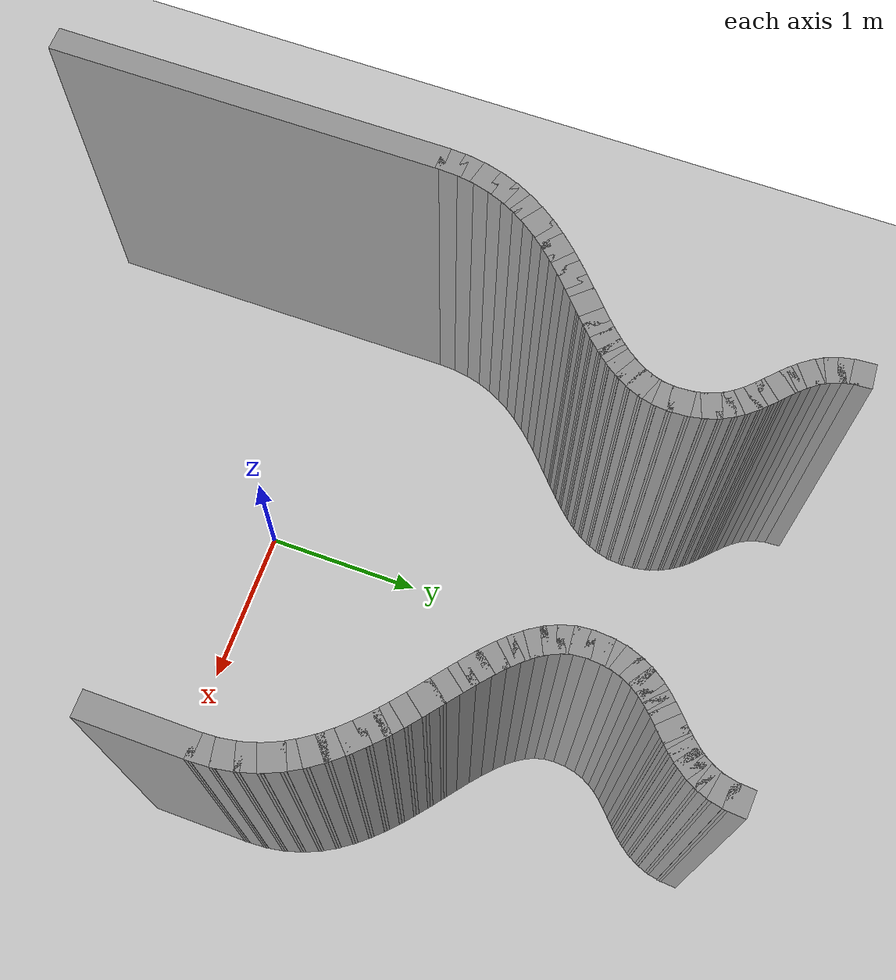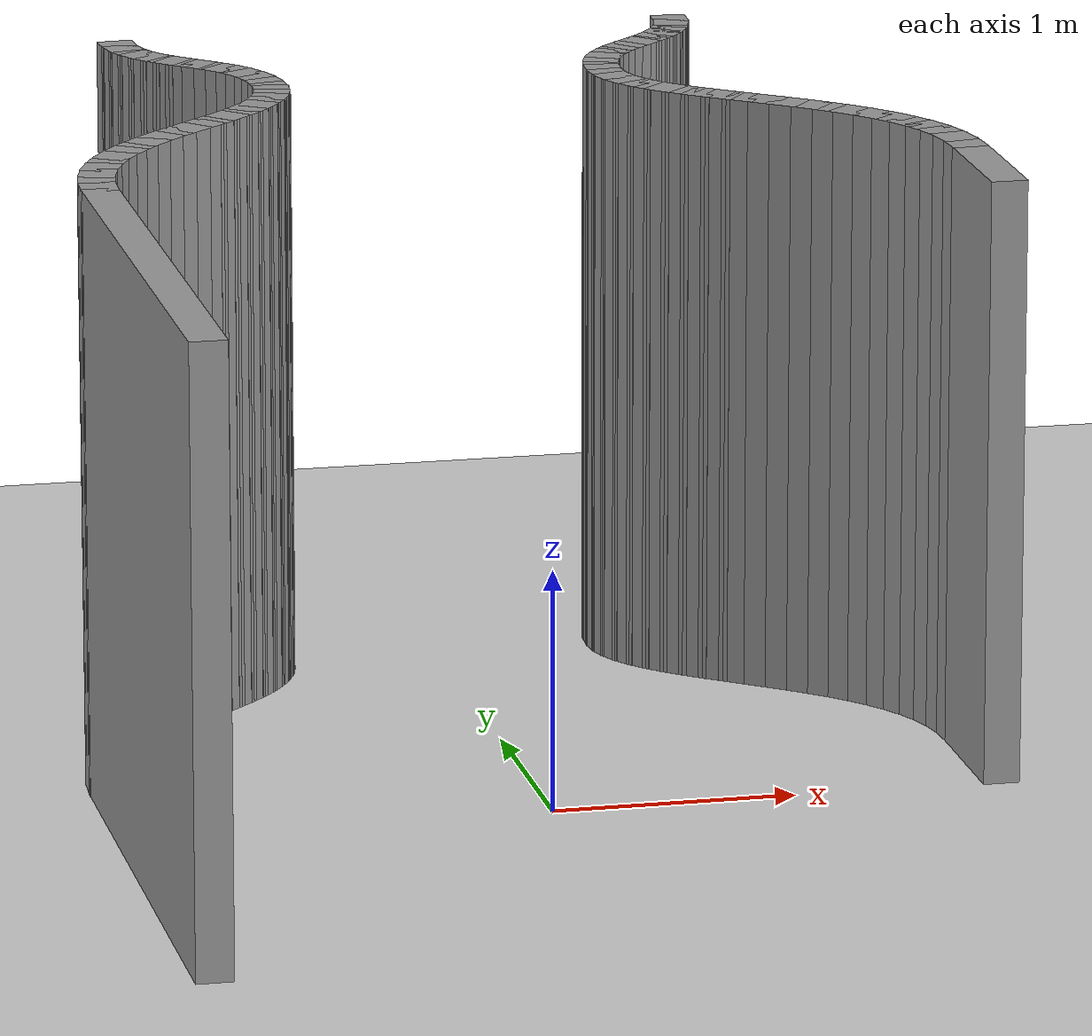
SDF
<sdf version="1.7">
 <world name="default">
  <model name="ground_plane">
   <static>1</static>
   <link name="link">
    <collision name="collision">
     <geometry><plane><normal>0 0 1</normal><size>100 100</size></plane></geometry>
     <surface>
      <contact><collide_bitmask>65535</collide_bitmask></contact>
      <friction><ode><mu>100</mu><mu2>50</mu2></ode></friction>
     </surface>
    </collision>
    <visual name="visual">
     <cast_shadows>0</cast_shadows>
     <geometry><plane><normal>0 0 1</normal><size>100 100</size></plane></geometry>
     <material>
      <script><uri>file://media/materials/scripts/gazebo.material</uri><name>Gazebo/Grey</name></script>
     </material>
    </visual>
   </link>
  </model>
  <model name="map_hourglass_u_hourglass">
   <link name="Hourglass_left_upper_00">
    <collision name="Hourglass_left_upper_00_Collision">
     <geometry><box><size>0.124347 0.15 2.5</size></box></geometry>
     <pose>0 0 1.25 0 -0 0</pose>
    </collision>
    <visual name="Hourglass_left_upper_00_Visual">
     <pose>0 0 1.25 0 -0 0</pose>
     <geometry><box><size>0.124347 0.15 2.5</size></box></geometry>
     <material>
      <script><uri>file://media/materials/scripts/gazebo.material</uri><name>Gazebo/Grey</name></script>
      <ambient>1 1 1 1</ambient>
     </material>
    </visual>
    <pose>-1.197249 3.157916 0 0 -0 -1.505509</pose>
   </link>
   <link name="Hourglass_left_upper_01">
    <collision name="Hourglass_left_upper_01_Collision">
     <geometry><box><size>0.115174 0.15 2.5</size></box></geometry>
     <pose>0 0 1.25 0 -0 0</pose>
    </collision>
    <visual name="Hourglass_left_upper_01_Visual">
     <pose>0 0 1.25 0 -0 0</pose>
     <geometry><box><size>0.115174 0.15 2.5</size></box></geometry>
     <material>
      <script><uri>file://media/materials/scripts/gazebo.material</uri><name>Gazebo/Grey</name></script>
      <ambient>1 1 1 1</ambient>
     </material>
    </visual>
    <pose>-1.186721 3.079059 0 0 -0 -1.362414</pose>
   </link>
   <link name="Hourglass_left_upper_02">
    <collision name="Hourglass_left_upper_02_Collision">
     <geometry><box><size>0.108873 0.15 2.5</size></box></geometry>
     <pose>0 0 1.25 0 -0 0</pose>
    </collision>
    <visual name="Hourglass_left_upper_02_Visual">
     <pose>0 0 1.25 0 -0 0</pose>
     <geometry><box><size>0.108873 0.15 2.5</size></box></geometry>
     <material>
      <script><uri>file://media/materials/scripts/gazebo.material</uri><name>Gazebo/Grey</name></script>
      <ambient>1 1 1 1</ambient>
     </material>
    </visual>
    <pose>-1.166863 3.010038 0 0 -0 -1.212304</pose>
   </link>
   <link name="Hourglass_left_upper_03">
    <collision name="Hourglass_left_upper_03_Collision">
     <geometry><box><size>0.105057 0.15 2.5</size></box></geometry>
     <pose>0 0 1.25 0 -0 0</pose>
    </collision>
    <visual name="Hourglass_left_upper_03_Visual">
     <pose>0 0 1.25 0 -0 0</pose>
     <geometry><box><size>0.105057 0.15 2.5</size></box></geometry>
     <material>
      <script><uri>file://media/materials/scripts/gazebo.material</uri><name>Gazebo/Grey</name></script>
      <ambient>1 1 1 1</ambient>
     </material>
    </visual>
    <pose>-1.139109 2.949286 0 0 -0 -1.068119</pose>
   </link>
   <link name="Hourglass_left_upper_04">
    <collision name="Hourglass_left_upper_04_Collision">
     <geometry><box><size>0.103132 0.15 2.5</size></box></geometry>
     <pose>0 0 1.25 0 -0 0</pose>
    </collision>
    <visual name="Hourglass_left_upper_04_Visual">
     <pose>0 0 1.25 0 -0 0</pose>
     <geometry><box><size>0.103132 0.15 2.5</size></box></geometry>
     <material>
      <script><uri>file://media/materials/scripts/gazebo.material</uri><name>Gazebo/Grey</name></script>
      <ambient>1 1 1 1</ambient>
     </material>
    </visual>
    <pose>-1.104895 2.895236 0 0 -0 -0.942927</pose>
   </link>
   <link name="Hourglass_left_upper_05">
    <collision name="Hourglass_left_upper_05_Collision">
     <geometry><box><size>0.102434 0.15 2.5</size></box></geometry>
     <pose>0 0 1.25 0 -0 0</pose>
    </collision>
    <visual name="Hourglass_left_upper_05_Visual">
     <pose>0 0 1.25 0 -0 0</pose>
     <geometry><box><size>0.102434 0.15 2.5</size></box></geometry>
     <material>
      <script><uri>file://media/materials/scripts/gazebo.material</uri><name>Gazebo/Grey</name></script>
      <ambient>1 1 1 1</ambient>
     </material>
    </visual>
    <pose>-1.065657 2.846320 0 0 -0 -0.846018</pose>
   </link>
   <link name="Hourglass_left_upper_06">
    <collision name="Hourglass_left_upper_06_Collision">
     <geometry><box><size>0.102381 0.15 2.5</size></box></geometry>
     <pose>0 0 1.25 0 -0 0</pose>
    </collision>
    <visual name="Hourglass_left_upper_06_Visual">
     <pose>0 0 1.25 0 -0 0</pose>
     <geometry><box><size>0.102381 0.15 2.5</size></box></geometry>
     <material>
      <script><uri>file://media/materials/scripts/gazebo.material</uri><name>Gazebo/Grey</name></script>
      <ambient>1 1 1 1</ambient>
     </material>
    </visual>
    <pose>-1.022830 2.800970 0 0 -0 -0.781939</pose>
   </link>
   <link name="Hourglass_left_upper_07">
    <collision name="Hourglass_left_upper_07_Collision">
     <geometry><box><size>0.102571 0.15 2.5</size></box></geometry>
     <pose>0 0 1.25 0 -0 0</pose>
    </collision>
    <visual name="Hourglass_left_upper_07_Visual">
     <pose>0 0 1.25 0 -0 0</pose>
     <geometry><box><size>0.102571 0.15 2.5</size></box></geometry>
     <material>
      <script><uri>file://media/materials/scripts/gazebo.material</uri><name>Gazebo/Grey</name></script>
      <ambient>1 1 1 1</ambient>
     </material>
    </visual>
    <pose>-0.977849 2.757621 0 0 -0 -0.751981</pose>
   </link>
   <link name="Hourglass_left_upper_08">
    <collision name="Hourglass_left_upper_08_Collision">
     <geometry><box><size>0.102812 0.15 2.5</size></box></geometry>
     <pose>0 0 1.25 0 -0 0</pose>
    </collision>
    <visual name="Hourglass_left_upper_08_Visual">
     <pose>0 0 1.25 0 -0 0</pose>
     <geometry><box><size>0.102812 0.15 2.5</size></box></geometry>
     <material>
      <script><uri>file://media/materials/scripts/gazebo.material</uri><name>Gazebo/Grey</name></script>
      <ambient>1 1 1 1</ambient>
     </material>
    </visual>
    <pose>-0.932151 2.714703 0 0 -0 -0.756068</pose>
   </link>
   <link name="Hourglass_left_upper_09">
    <collision name="Hourglass_left_upper_09_Collision">
     <geometry><box><size>0.103129 0.15 2.5</size></box></geometry>
     <pose>0 0 1.25 0 -0 0</pose>
    </collision>
    <visual name="Hourglass_left_upper_09_Visual">
     <pose>0 0 1.25 0 -0 0</pose>
     <geometry><box><size>0.103129 0.15 2.5</size></box></geometry>
     <material>
      <script><uri>file://media/materials/scripts/gazebo.material</uri><name>Gazebo/Grey</name></script>
      <ambient>1 1 1 1</ambient>
     </material>
    </visual>
    <pose>-0.887170 2.670651 0 0 -0 -0.793794</pose>
   </link>
   <link name="Hourglass_left_upper_10">
    <collision name="Hourglass_left_upper_10_Collision">
     <geometry><box><size>0.10376 0.15 2.5</size></box></geometry>
     <pose>0 0 1.25 0 -0 0</pose>
    </collision>
    <visual name="Hourglass_left_upper_10_Visual">
     <pose>0 0 1.25 0 -0 0</pose>
     <geometry><box><size>0.10376 0.15 2.5</size></box></geometry>
     <material>
      <script><uri>file://media/materials/scripts/gazebo.material</uri><name>Gazebo/Grey</name></script>
      <ambient>1 1 1 1</ambient>
     </material>
    </visual>
    <pose>-0.844343 2.623895 0 0 -0 -0.864296</pose>
   </link>
   <link name="Hourglass_left_upper_11">
    <collision name="Hourglass_left_upper_11_Collision">
     <geometry><box><size>0.105139 0.15 2.5</size></box></geometry>
     <pose>0 0 1.25 0 -0 0</pose>
    </collision>
    <visual name="Hourglass_left_upper_11_Visual">
     <pose>0 0 1.25 0 -0 0</pose>
     <geometry><box><size>0.105139 0.15 2.5</size></box></geometry>
     <material>
      <script><uri>file://media/materials/scripts/gazebo.material</uri><name>Gazebo/Grey</name></script>
      <ambient>1 1 1 1</ambient>
     </material>
    </visual>
    <pose>-0.805105 2.572870 0 0 -0 -0.965121</pose>
   </link>
   <link name="Hourglass_left_upper_12">
    <collision name="Hourglass_left_upper_12_Collision">
     <geometry><box><size>0.107847 0.15 2.5</size></box></geometry>
     <pose>0 0 1.25 0 -0 0</pose>
    </collision>
    <visual name="Hourglass_left_upper_12_Visual">
     <pose>0 0 1.25 0 -0 0</pose>
     <geometry><box><size>0.107847 0.15 2.5</size></box></geometry>
     <material>
      <script><uri>file://media/materials/scripts/gazebo.material</uri><name>Gazebo/Grey</name></script>
      <ambient>1 1 1 1</ambient>
     </material>
    </visual>
    <pose>-0.770891 2.516007 0 0 -0 -1.090589</pose>
   </link>
   <link name="Hourglass_left_upper_13">
    <collision name="Hourglass_left_upper_13_Collision">
     <geometry><box><size>0.112507 0.15 2.5</size></box></geometry>
     <pose>0 0 1.25 0 -0 0</pose>
    </collision>
    <visual name="Hourglass_left_upper_13_Visual">
     <pose>0 0 1.25 0 -0 0</pose>
     <geometry><box><size>0.112507 0.15 2.5</size></box></geometry>
     <material>
      <script><uri>file://media/materials/scripts/gazebo.material</uri><name>Gazebo/Grey</name></script>
      <ambient>1 1 1 1</ambient>
     </material>
    </visual>
    <pose>-0.743137 2.451740 0 0 -0 -1.231018</pose>
   </link>
   <link name="Hourglass_left_upper_14">
    <collision name="Hourglass_left_upper_14_Collision">
     <geometry><box><size>0.119651 0.15 2.5</size></box></geometry>
     <pose>0 0 1.25 0 -0 0</pose>
    </collision>
    <visual name="Hourglass_left_upper_14_Visual">
     <pose>0 0 1.25 0 -0 0</pose>
     <geometry><box><size>0.119651 0.15 2.5</size></box></geometry>
     <material>
      <script><uri>file://media/materials/scripts/gazebo.material</uri><name>Gazebo/Grey</name></script>
      <ambient>1 1 1 1</ambient>
     </material>
    </visual>
    <pose>-0.723279 2.378500 0 0 -0 -1.374284</pose>
   </link>
   <link name="Hourglass_left_upper_15">
    <collision name="Hourglass_left_upper_15_Collision">
     <geometry><box><size>0.12961 0.15 2.5</size></box></geometry>
     <pose>0 0 1.25 0 -0 0</pose>
    </collision>
    <visual name="Hourglass_left_upper_15_Visual">
     <pose>0 0 1.25 0 -0 0</pose>
     <geometry><box><size>0.12961 0.15 2.5</size></box></geometry>
     <material>
      <script><uri>file://media/materials/scripts/gazebo.material</uri><name>Gazebo/Grey</name></script>
      <ambient>1 1 1 1</ambient>
     </material>
    </visual>
    <pose>-0.712751 2.294720 0 0 -0 -1.509348</pose>
   </link>
   <link name="Hourglass_left_lower_00">
    <collision name="Hourglass_left_lower_00_Collision">
     <geometry><box><size>0.115649 0.15 2.5</size></box></geometry>
     <pose>0 0 1.25 0 -0 0</pose>
    </collision>
    <visual name="Hourglass_left_lower_00_Visual">
     <pose>0 0 1.25 0 -0 0</pose>
     <geometry><box><size>0.115649 0.15 2.5</size></box></geometry>
     <material>
      <script><uri>file://media/materials/scripts/gazebo.material</uri><name>Gazebo/Grey</name></script>
      <ambient>1 1 1 1</ambient>
     </material>
    </visual>
    <pose>-0.712975 2.212293 0 0 -0 -1.649536</pose>
   </link>
   <link name="Hourglass_left_lower_01">
    <collision name="Hourglass_left_lower_01_Collision">
     <geometry><box><size>0.113231 0.15 2.5</size></box></geometry>
     <pose>0 0 1.25 0 -0 0</pose>
    </collision>
    <visual name="Hourglass_left_lower_01_Visual">
     <pose>0 0 1.25 0 -0 0</pose>
     <geometry><box><size>0.113231 0.15 2.5</size></box></geometry>
     <material>
      <script><uri>file://media/materials/scripts/gazebo.material</uri><name>Gazebo/Grey</name></script>
      <ambient>1 1 1 1</ambient>
     </material>
    </visual>
    <pose>-0.724504 2.138983 0 0 -0 -1.806584</pose>
   </link>
   <link name="Hourglass_left_lower_02">
    <collision name="Hourglass_left_lower_02_Collision">
     <geometry><box><size>0.112868 0.15 2.5</size></box></geometry>
     <pose>0 0 1.25 0 -0 0</pose>
    </collision>
    <visual name="Hourglass_left_lower_02_Visual">
     <pose>0 0 1.25 0 -0 0</pose>
     <geometry><box><size>0.112868 0.15 2.5</size></box></geometry>
     <material>
      <script><uri>file://media/materials/scripts/gazebo.material</uri><name>Gazebo/Grey</name></script>
      <ambient>1 1 1 1</ambient>
     </material>
    </visual>
    <pose>-0.746632 2.069570 0 0 -0 -1.952581</pose>
   </link>
   <link name="Hourglass_left_lower_03">
    <collision name="Hourglass_left_lower_03_Collision">
     <geometry><box><size>0.114045 0.15 2.5</size></box></geometry>
     <pose>0 0 1.25 0 -0 0</pose>
    </collision>
    <visual name="Hourglass_left_lower_03_Visual">
     <pose>0 0 1.25 0 -0 0</pose>
     <geometry><box><size>0.114045 0.15 2.5</size></box></geometry>
     <material>
      <script><uri>file://media/materials/scripts/gazebo.material</uri><name>Gazebo/Grey</name></script>
      <ambient>1 1 1 1</ambient>
     </material>
    </visual>
    <pose>-0.778244 2.003428 0 0 -0 -2.079672</pose>
   </link>
   <link name="Hourglass_left_lower_04">
    <collision name="Hourglass_left_lower_04_Collision">
     <geometry><box><size>0.116229 0.15 2.5</size></box></geometry>
     <pose>0 0 1.25 0 -0 0</pose>
    </collision>
    <visual name="Hourglass_left_lower_04_Visual">
     <pose>0 0 1.25 0 -0 0</pose>
     <geometry><box><size>0.116229 0.15 2.5</size></box></geometry>
     <material>
      <script><uri>file://media/materials/scripts/gazebo.material</uri><name>Gazebo/Grey</name></script>
      <ambient>1 1 1 1</ambient>
     </material>
    </visual>
    <pose>-0.818223 1.939932 0 0 -0 -2.184244</pose>
   </link>
   <link name="Hourglass_left_lower_05">
    <collision name="Hourglass_left_lower_05_Collision">
     <geometry><box><size>0.118951 0.15 2.5</size></box></geometry>
     <pose>0 0 1.25 0 -0 0</pose>
    </collision>
    <visual name="Hourglass_left_lower_05_Visual">
     <pose>0 0 1.25 0 -0 0</pose>
     <geometry><box><size>0.118951 0.15 2.5</size></box></geometry>
     <material>
      <script><uri>file://media/materials/scripts/gazebo.material</uri><name>Gazebo/Grey</name></script>
      <ambient>1 1 1 1</ambient>
     </material>
    </visual>
    <pose>-0.865455 1.878456 0 0 -0 -2.266115</pose>
   </link>
   <link name="Hourglass_left_lower_06">
    <collision name="Hourglass_left_lower_06_Collision">
     <geometry><box><size>0.121846 0.15 2.5</size></box></geometry>
     <pose>0 0 1.25 0 -0 0</pose>
    </collision>
    <visual name="Hourglass_left_lower_06_Visual">
     <pose>0 0 1.25 0 -0 0</pose>
     <geometry><box><size>0.121846 0.15 2.5</size></box></geometry>
     <material>
      <script><uri>file://media/materials/scripts/gazebo.material</uri><name>Gazebo/Grey</name></script>
      <ambient>1 1 1 1</ambient>
     </material>
    </visual>
    <pose>-0.918822 1.818374 0 0 -0 -2.326957</pose>
   </link>
   <link name="Hourglass_left_lower_07">
    <collision name="Hourglass_left_lower_07_Collision">
     <geometry><box><size>0.124651 0.15 2.5</size></box></geometry>
     <pose>0 0 1.25 0 -0 0</pose>
    </collision>
    <visual name="Hourglass_left_lower_07_Visual">
     <pose>0 0 1.25 0 -0 0</pose>
     <geometry><box><size>0.124651 0.15 2.5</size></box></geometry>
     <material>
      <script><uri>file://media/materials/scripts/gazebo.material</uri><name>Gazebo/Grey</name></script>
      <ambient>1 1 1 1</ambient>
     </material>
    </visual>
    <pose>-0.977211 1.759061 0 0 -0 -2.369021</pose>
   </link>
   <link name="Hourglass_left_lower_08">
    <collision name="Hourglass_left_lower_08_Collision">
     <geometry><box><size>0.127194 0.15 2.5</size></box></geometry>
     <pose>0 0 1.25 0 -0 0</pose>
    </collision>
    <visual name="Hourglass_left_lower_08_Visual">
     <pose>0 0 1.25 0 -0 0</pose>
     <geometry><box><size>0.127194 0.15 2.5</size></box></geometry>
     <material>
      <script><uri>file://media/materials/scripts/gazebo.material</uri><name>Gazebo/Grey</name></script>
      <ambient>1 1 1 1</ambient>
     </material>
    </visual>
    <pose>-1.039504 1.699892 0 0 -0 -2.394429</pose>
   </link>
   <link name="Hourglass_left_lower_09">
    <collision name="Hourglass_left_lower_09_Collision">
     <geometry><box><size>0.129375 0.15 2.5</size></box></geometry>
     <pose>0 0 1.25 0 -0 0</pose>
    </collision>
    <visual name="Hourglass_left_lower_09_Visual">
     <pose>0 0 1.25 0 -0 0</pose>
     <geometry><box><size>0.129375 0.15 2.5</size></box></geometry>
     <material>
      <script><uri>file://media/materials/scripts/gazebo.material</uri><name>Gazebo/Grey</name></script>
      <ambient>1 1 1 1</ambient>
     </material>
    </visual>
    <pose>-1.104587 1.640242 0 0 -0 -2.404874</pose>
   </link>
   <link name="Hourglass_left_lower_10">
    <collision name="Hourglass_left_lower_10_Collision">
     <geometry><box><size>0.131156 0.15 2.5</size></box></geometry>
     <pose>0 0 1.25 0 -0 0</pose>
    </collision>
    <visual name="Hourglass_left_lower_10_Visual">
     <pose>0 0 1.25 0 -0 0</pose>
     <geometry><box><size>0.131156 0.15 2.5</size></box></geometry>
     <material>
      <script><uri>file://media/materials/scripts/gazebo.material</uri><name>Gazebo/Grey</name></script>
      <ambient>1 1 1 1</ambient>
     </material>
    </visual>
    <pose>-1.171343 1.579484 0 0 -0 -2.401559</pose>
   </link>
   <link name="Hourglass_left_lower_11">
    <collision name="Hourglass_left_lower_11_Collision">
     <geometry><box><size>0.132548 0.15 2.5</size></box></geometry>
     <pose>0 0 1.25 0 -0 0</pose>
    </collision>
    <visual name="Hourglass_left_lower_11_Visual">
     <pose>0 0 1.25 0 -0 0</pose>
     <geometry><box><size>0.132548 0.15 2.5</size></box></geometry>
     <material>
      <script><uri>file://media/materials/scripts/gazebo.material</uri><name>Gazebo/Grey</name></script>
      <ambient>1 1 1 1</ambient>
     </material>
    </visual>
    <pose>-1.238657 1.516993 0 0 -0 -2.385238</pose>
   </link>
   <link name="Hourglass_left_lower_12">
    <collision name="Hourglass_left_lower_12_Collision">
     <geometry><box><size>0.133609 0.15 2.5</size></box></geometry>
     <pose>0 0 1.25 0 -0 0</pose>
    </collision>
    <visual name="Hourglass_left_lower_12_Visual">
     <pose>0 0 1.25 0 -0 0</pose>
     <geometry><box><size>0.133609 0.15 2.5</size></box></geometry>
     <material>
      <script><uri>file://media/materials/scripts/gazebo.material</uri><name>Gazebo/Grey</name></script>
      <ambient>1 1 1 1</ambient>
     </material>
    </visual>
    <pose>-1.305413 1.452145 0 0 -0 -2.356301</pose>
   </link>
   <link name="Hourglass_left_lower_13">
    <collision name="Hourglass_left_lower_13_Collision">
     <geometry><box><size>0.134442 0.15 2.5</size></box></geometry>
     <pose>0 0 1.25 0 -0 0</pose>
    </collision>
    <visual name="Hourglass_left_lower_13_Visual">
     <pose>0 0 1.25 0 -0 0</pose>
     <geometry><box><size>0.134442 0.15 2.5</size></box></geometry>
     <material>
      <script><uri>file://media/materials/scripts/gazebo.material</uri><name>Gazebo/Grey</name></script>
      <ambient>1 1 1 1</ambient>
     </material>
    </visual>
    <pose>-1.370496 1.384312 0 0 -0 -2.314901</pose>
   </link>
   <link name="Hourglass_left_lower_14">
    <collision name="Hourglass_left_lower_14_Collision">
     <geometry><box><size>0.135198 0.15 2.5</size></box></geometry>
     <pose>0 0 1.25 0 -0 0</pose>
    </collision>
    <visual name="Hourglass_left_lower_14_Visual">
     <pose>0 0 1.25 0 -0 0</pose>
     <geometry><box><size>0.135198 0.15 2.5</size></box></geometry>
     <material>
      <script><uri>file://media/materials/scripts/gazebo.material</uri><name>Gazebo/Grey</name></script>
      <ambient>1 1 1 1</ambient>
     </material>
    </visual>
    <pose>-1.432789 1.312870 0 0 -0 -2.261105</pose>
   </link>
   <link name="Hourglass_left_lower_15">
    <collision name="Hourglass_left_lower_15_Collision">
     <geometry><box><size>0.136072 0.15 2.5</size></box></geometry>
     <pose>0 0 1.25 0 -0 0</pose>
    </collision>
    <visual name="Hourglass_left_lower_15_Visual">
     <pose>0 0 1.25 0 -0 0</pose>
     <geometry><box><size>0.136072 0.15 2.5</size></box></geometry>
     <material>
      <script><uri>file://media/materials/scripts/gazebo.material</uri><name>Gazebo/Grey</name></script>
      <ambient>1 1 1 1</ambient>
     </material>
    </visual>
    <pose>-1.491178 1.237194 0 0 -0 -2.195099</pose>
   </link>
   <link name="Hourglass_left_lower_16">
    <collision name="Hourglass_left_lower_16_Collision">
     <geometry><box><size>0.137301 0.15 2.5</size></box></geometry>
     <pose>0 0 1.25 0 -0 0</pose>
    </collision>
    <visual name="Hourglass_left_lower_16_Visual">
     <pose>0 0 1.25 0 -0 0</pose>
     <geometry><box><size>0.137301 0.15 2.5</size></box></geometry>
     <material>
      <script><uri>file://media/materials/scripts/gazebo.material</uri><name>Gazebo/Grey</name></script>
      <ambient>1 1 1 1</ambient>
     </material>
    </visual>
    <pose>-1.544545 1.156658 0 0 -0 -2.117428</pose>
   </link>
   <link name="Hourglass_left_lower_17">
    <collision name="Hourglass_left_lower_17_Collision">
     <geometry><box><size>0.13916 0.15 2.5</size></box></geometry>
     <pose>0 0 1.25 0 -0 0</pose>
    </collision>
    <visual name="Hourglass_left_lower_17_Visual">
     <pose>0 0 1.25 0 -0 0</pose>
     <geometry><box><size>0.13916 0.15 2.5</size></box></geometry>
     <material>
      <script><uri>file://media/materials/scripts/gazebo.material</uri><name>Gazebo/Grey</name></script>
      <ambient>1 1 1 1</ambient>
     </material>
    </visual>
    <pose>-1.591777 1.070636 0 0 -0 -2.029247</pose>
   </link>
   <link name="Hourglass_left_lower_18">
    <collision name="Hourglass_left_lower_18_Collision">
     <geometry><box><size>0.141941 0.15 2.5</size></box></geometry>
     <pose>0 0 1.25 0 -0 0</pose>
    </collision>
    <visual name="Hourglass_left_lower_18_Visual">
     <pose>0 0 1.25 0 -0 0</pose>
     <geometry><box><size>0.141941 0.15 2.5</size></box></geometry>
     <material>
      <script><uri>file://media/materials/scripts/gazebo.material</uri><name>Gazebo/Grey</name></script>
      <ambient>1 1 1 1</ambient>
     </material>
    </visual>
    <pose>-1.631756 0.978503 0 0 -0 -1.932507</pose>
   </link>
   <link name="Hourglass_left_lower_19">
    <collision name="Hourglass_left_lower_19_Collision">
     <geometry><box><size>0.145932 0.15 2.5</size></box></geometry>
     <pose>0 0 1.25 0 -0 0</pose>
    </collision>
    <visual name="Hourglass_left_lower_19_Visual">
     <pose>0 0 1.25 0 -0 0</pose>
     <geometry><box><size>0.145932 0.15 2.5</size></box></geometry>
     <material>
      <script><uri>file://media/materials/scripts/gazebo.material</uri><name>Gazebo/Grey</name></script>
      <ambient>1 1 1 1</ambient>
     </material>
    </visual>
    <pose>-1.663368 0.879634 0 0 -0 -1.829973</pose>
   </link>
   <link name="Hourglass_left_lower_20">
    <collision name="Hourglass_left_lower_20_Collision">
     <geometry><box><size>0.15139 0.15 2.5</size></box></geometry>
     <pose>0 0 1.25 0 -0 0</pose>
    </collision>
    <visual name="Hourglass_left_lower_20_Visual">
     <pose>0 0 1.25 0 -0 0</pose>
     <geometry><box><size>0.15139 0.15 2.5</size></box></geometry>
     <material>
      <script><uri>file://media/materials/scripts/gazebo.material</uri><name>Gazebo/Grey</name></script>
      <ambient>1 1 1 1</ambient>
     </material>
    </visual>
    <pose>-1.685496 0.773403 0 0 -0 -1.724988</pose>
   </link>
   <link name="Hourglass_left_lower_21">
    <collision name="Hourglass_left_lower_21_Collision">
     <geometry><box><size>0.158518 0.15 2.5</size></box></geometry>
     <pose>0 0 1.25 0 -0 0</pose>
    </collision>
    <visual name="Hourglass_left_lower_21_Visual">
     <pose>0 0 1.25 0 -0 0</pose>
     <geometry><box><size>0.158518 0.15 2.5</size></box></geometry>
     <material>
      <script><uri>file://media/materials/scripts/gazebo.material</uri><name>Gazebo/Grey</name></script>
      <ambient>1 1 1 1</ambient>
     </material>
    </visual>
    <pose>-1.697025 0.659184 0 0 -0 -1.621024</pose>
   </link>
   <link name="Hourglass_left_arm">
    <collision name="Hourglass_left_arm_Collision">
     <geometry><box><size>2.44 0.15 2.5</size></box></geometry>
     <pose>0 0 1.25 0 -0 0</pose>
    </collision>
    <visual name="Hourglass_left_arm_Visual">
     <pose>0 0 1.25 0 -0 0</pose>
     <geometry><box><size>2.44 0.15 2.5</size></box></geometry>
     <material>
      <script><uri>file://media/materials/scripts/gazebo.material</uri><name>Gazebo/Grey</name></script>
      <ambient>1 1 1 1</ambient>
     </material>
    </visual>
    <pose>-1.700000 -0.600000 0 0 -0 -1.570796</pose>
   </link>
   <link name="Hourglass_right_upper_00">
    <collision name="Hourglass_right_upper_00_Collision">
     <geometry><box><size>0.124347 0.15 2.5</size></box></geometry>
     <pose>0 0 1.25 0 -0 0</pose>
    </collision>
    <visual name="Hourglass_right_upper_00_Visual">
     <pose>0 0 1.25 0 -0 0</pose>
     <geometry><box><size>0.124347 0.15 2.5</size></box></geometry>
     <material>
      <script><uri>file://media/materials/scripts/gazebo.material</uri><name>Gazebo/Grey</name></script>
      <ambient>1 1 1 1</ambient>
     </material>
    </visual>
    <pose>1.197249 3.157916 0 0 -0 -1.636084</pose>
   </link>
   <link name="Hourglass_right_upper_01">
    <collision name="Hourglass_right_upper_01_Collision">
     <geometry><box><size>0.115174 0.15 2.5</size></box></geometry>
     <pose>0 0 1.25 0 -0 0</pose>
    </collision>
    <visual name="Hourglass_right_upper_01_Visual">
     <pose>0 0 1.25 0 -0 0</pose>
     <geometry><box><size>0.115174 0.15 2.5</size></box></geometry>
     <material>
      <script><uri>file://media/materials/scripts/gazebo.material</uri><name>Gazebo/Grey</name></script>
      <ambient>1 1 1 1</ambient>
     </material>
    </visual>
    <pose>1.186721 3.079059 0 0 -0 -1.779179</pose>
   </link>
   <link name="Hourglass_right_upper_02">
    <collision name="Hourglass_right_upper_02_Collision">
     <geometry><box><size>0.108873 0.15 2.5</size></box></geometry>
     <pose>0 0 1.25 0 -0 0</pose>
    </collision>
    <visual name="Hourglass_right_upper_02_Visual">
     <pose>0 0 1.25 0 -0 0</pose>
     <geometry><box><size>0.108873 0.15 2.5</size></box></geometry>
     <material>
      <script><uri>file://media/materials/scripts/gazebo.material</uri><name>Gazebo/Grey</name></script>
      <ambient>1 1 1 1</ambient>
     </material>
    </visual>
    <pose>1.166863 3.010038 0 0 -0 -1.929289</pose>
   </link>
   <link name="Hourglass_right_upper_03">
    <collision name="Hourglass_right_upper_03_Collision">
     <geometry><box><size>0.105057 0.15 2.5</size></box></geometry>
     <pose>0 0 1.25 0 -0 0</pose>
    </collision>
    <visual name="Hourglass_right_upper_03_Visual">
     <pose>0 0 1.25 0 -0 0</pose>
     <geometry><box><size>0.105057 0.15 2.5</size></box></geometry>
     <material>
      <script><uri>file://media/materials/scripts/gazebo.material</uri><name>Gazebo/Grey</name></script>
      <ambient>1 1 1 1</ambient>
     </material>
    </visual>
    <pose>1.139109 2.949286 0 0 -0 -2.073473</pose>
   </link>
   <link name="Hourglass_right_upper_04">
    <collision name="Hourglass_right_upper_04_Collision">
     <geometry><box><size>0.103132 0.15 2.5</size></box></geometry>
     <pose>0 0 1.25 0 -0 0</pose>
    </collision>
    <visual name="Hourglass_right_upper_04_Visual">
     <pose>0 0 1.25 0 -0 0</pose>
     <geometry><box><size>0.103132 0.15 2.5</size></box></geometry>
     <material>
      <script><uri>file://media/materials/scripts/gazebo.material</uri><name>Gazebo/Grey</name></script>
      <ambient>1 1 1 1</ambient>
     </material>
    </visual>
    <pose>1.104895 2.895236 0 0 -0 -2.198666</pose>
   </link>
   <link name="Hourglass_right_upper_05">
    <collision name="Hourglass_right_upper_05_Collision">
     <geometry><box><size>0.102434 0.15 2.5</size></box></geometry>
     <pose>0 0 1.25 0 -0 0</pose>
    </collision>
    <visual name="Hourglass_right_upper_05_Visual">
     <pose>0 0 1.25 0 -0 0</pose>
     <geometry><box><size>0.102434 0.15 2.5</size></box></geometry>
     <material>
      <script><uri>file://media/materials/scripts/gazebo.material</uri><name>Gazebo/Grey</name></script>
      <ambient>1 1 1 1</ambient>
     </material>
    </visual>
    <pose>1.065657 2.846320 0 0 -0 -2.295575</pose>
   </link>
   <link name="Hourglass_right_upper_06">
    <collision name="Hourglass_right_upper_06_Collision">
     <geometry><box><size>0.102381 0.15 2.5</size></box></geometry>
     <pose>0 0 1.25 0 -0 0</pose>
    </collision>
    <visual name="Hourglass_right_upper_06_Visual">
     <pose>0 0 1.25 0 -0 0</pose>
     <geometry><box><size>0.102381 0.15 2.5</size></box></geometry>
     <material>
      <script><uri>file://media/materials/scripts/gazebo.material</uri><name>Gazebo/Grey</name></script>
      <ambient>1 1 1 1</ambient>
     </material>
    </visual>
    <pose>1.022830 2.800970 0 0 -0 -2.359654</pose>
   </link>
   <link name="Hourglass_right_upper_07">
    <collision name="Hourglass_right_upper_07_Collision">
     <geometry><box><size>0.102571 0.15 2.5</size></box></geometry>
     <pose>0 0 1.25 0 -0 0</pose>
    </collision>
    <visual name="Hourglass_right_upper_07_Visual">
     <pose>0 0 1.25 0 -0 0</pose>
     <geometry><box><size>0.102571 0.15 2.5</size></box></geometry>
     <material>
      <script><uri>file://media/materials/scripts/gazebo.material</uri><name>Gazebo/Grey</name></script>
      <ambient>1 1 1 1</ambient>
     </material>
    </visual>
    <pose>0.977849 2.757621 0 0 -0 -2.389612</pose>
   </link>
   <link name="Hourglass_right_upper_08">
    <collision name="Hourglass_right_upper_08_Collision">
     <geometry><box><size>0.102812 0.15 2.5</size></box></geometry>
     <pose>0 0 1.25 0 -0 0</pose>
    </collision>
    <visual name="Hourglass_right_upper_08_Visual">
     <pose>0 0 1.25 0 -0 0</pose>
     <geometry><box><size>0.102812 0.15 2.5</size></box></geometry>
     <material>
      <script><uri>file://media/materials/scripts/gazebo.material</uri><name>Gazebo/Grey</name></script>
      <ambient>1 1 1 1</ambient>
     </material>
    </visual>
    <pose>0.932151 2.714703 0 0 -0 -2.385524</pose>
   </link>
   <link name="Hourglass_right_upper_09">
    <collision name="Hourglass_right_upper_09_Collision">
     <geometry><box><size>0.103129 0.15 2.5</size></box></geometry>
     <pose>0 0 1.25 0 -0 0</pose>
    </collision>
    <visual name="Hourglass_right_upper_09_Visual">
     <pose>0 0 1.25 0 -0 0</pose>
     <geometry><box><size>0.103129 0.15 2.5</size></box></geometry>
     <material>
      <script><uri>file://media/materials/scripts/gazebo.material</uri><name>Gazebo/Grey</name></script>
      <ambient>1 1 1 1</ambient>
     </material>
    </visual>
    <pose>0.887170 2.670651 0 0 -0 -2.347799</pose>
   </link>
   <link name="Hourglass_right_upper_10">
    <collision name="Hourglass_right_upper_10_Collision">
     <geometry><box><size>0.10376 0.15 2.5</size></box></geometry>
     <pose>0 0 1.25 0 -0 0</pose>
    </collision>
    <visual name="Hourglass_right_upper_10_Visual">
     <pose>0 0 1.25 0 -0 0</pose>
     <geometry><box><size>0.10376 0.15 2.5</size></box></geometry>
     <material>
      <script><uri>file://media/materials/scripts/gazebo.material</uri><name>Gazebo/Grey</name></script>
      <ambient>1 1 1 1</ambient>
     </material>
    </visual>
    <pose>0.844343 2.623895 0 0 -0 -2.277296</pose>
   </link>
   <link name="Hourglass_right_upper_11">
    <collision name="Hourglass_right_upper_11_Collision">
     <geometry><box><size>0.105139 0.15 2.5</size></box></geometry>
     <pose>0 0 1.25 0 -0 0</pose>
    </collision>
    <visual name="Hourglass_right_upper_11_Visual">
     <pose>0 0 1.25 0 -0 0</pose>
     <geometry><box><size>0.105139 0.15 2.5</size></box></geometry>
     <material>
      <script><uri>file://media/materials/scripts/gazebo.material</uri><name>Gazebo/Grey</name></script>
      <ambient>1 1 1 1</ambient>
     </material>
    </visual>
    <pose>0.805105 2.572870 0 0 -0 -2.176471</pose>
   </link>
   <link name="Hourglass_right_upper_12">
    <collision name="Hourglass_right_upper_12_Collision">
     <geometry><box><size>0.107847 0.15 2.5</size></box></geometry>
     <pose>0 0 1.25 0 -0 0</pose>
    </collision>
    <visual name="Hourglass_right_upper_12_Visual">
     <pose>0 0 1.25 0 -0 0</pose>
     <geometry><box><size>0.107847 0.15 2.5</size></box></geometry>
     <material>
      <script><uri>file://media/materials/scripts/gazebo.material</uri><name>Gazebo/Grey</name></script>
      <ambient>1 1 1 1</ambient>
     </material>
    </visual>
    <pose>0.770891 2.516007 0 0 -0 -2.051004</pose>
   </link>
   <link name="Hourglass_right_upper_13">
    <collision name="Hourglass_right_upper_13_Collision">
     <geometry><box><size>0.112507 0.15 2.5</size></box></geometry>
     <pose>0 0 1.25 0 -0 0</pose>
    </collision>
    <visual name="Hourglass_right_upper_13_Visual">
     <pose>0 0 1.25 0 -0 0</pose>
     <geometry><box><size>0.112507 0.15 2.5</size></box></geometry>
     <material>
      <script><uri>file://media/materials/scripts/gazebo.material</uri><name>Gazebo/Grey</name></script>
      <ambient>1 1 1 1</ambient>
     </material>
    </visual>
    <pose>0.743137 2.451740 0 0 -0 -1.910575</pose>
   </link>
   <link name="Hourglass_right_upper_14">
    <collision name="Hourglass_right_upper_14_Collision">
     <geometry><box><size>0.119651 0.15 2.5</size></box></geometry>
     <pose>0 0 1.25 0 -0 0</pose>
    </collision>
    <visual name="Hourglass_right_upper_14_Visual">
     <pose>0 0 1.25 0 -0 0</pose>
     <geometry><box><size>0.119651 0.15 2.5</size></box></geometry>
     <material>
      <script><uri>file://media/materials/scripts/gazebo.material</uri><name>Gazebo/Grey</name></script>
      <ambient>1 1 1 1</ambient>
     </material>
    </visual>
    <pose>0.723279 2.378500 0 0 -0 -1.767308</pose>
   </link>
   <link name="Hourglass_right_upper_15">
    <collision name="Hourglass_right_upper_15_Collision">
     <geometry><box><size>0.12961 0.15 2.5</size></box></geometry>
     <pose>0 0 1.25 0 -0 0</pose>
    </collision>
    <visual name="Hourglass_right_upper_15_Visual">
     <pose>0 0 1.25 0 -0 0</pose>
     <geometry><box><size>0.12961 0.15 2.5</size></box></geometry>
     <material>
      <script><uri>file://media/materials/scripts/gazebo.material</uri><name>Gazebo/Grey</name></script>
      <ambient>1 1 1 1</ambient>
     </material>
    </visual>
    <pose>0.712751 2.294720 0 0 -0 -1.632245</pose>
   </link>
   <link name="Hourglass_right_lower_00">
    <collision name="Hourglass_right_lower_00_Collision">
     <geometry><box><size>0.115725 0.15 2.5</size></box></geometry>
     <pose>0 0 1.25 0 -0 0</pose>
    </collision>
    <visual name="Hourglass_right_lower_00_Visual">
     <pose>0 0 1.25 0 -0 0</pose>
     <geometry><box><size>0.115725 0.15 2.5</size></box></geometry>
     <material>
      <script><uri>file://media/materials/scripts/gazebo.material</uri><name>Gazebo/Grey</name></script>
      <ambient>1 1 1 1</ambient>
     </material>
    </visual>
    <pose>0.713426 2.212293 0 0 -0 -1.480187</pose>
   </link>
   <link name="Hourglass_right_lower_01">
    <collision name="Hourglass_right_lower_01_Collision">
     <geometry><box><size>0.11388 0.15 2.5</size></box></geometry>
     <pose>0 0 1.25 0 -0 0</pose>
    </collision>
    <visual name="Hourglass_right_lower_01_Visual">
     <pose>0 0 1.25 0 -0 0</pose>
     <geometry><box><size>0.11388 0.15 2.5</size></box></geometry>
     <material>
      <script><uri>file://media/materials/scripts/gazebo.material</uri><name>Gazebo/Grey</name></script>
      <ambient>1 1 1 1</ambient>
     </material>
    </visual>
    <pose>0.726702 2.138983 0 0 -0 -1.300889</pose>
   </link>
   <link name="Hourglass_right_lower_02">
    <collision name="Hourglass_right_lower_02_Collision">
     <geometry><box><size>0.114498 0.15 2.5</size></box></geometry>
     <pose>0 0 1.25 0 -0 0</pose>
    </collision>
    <visual name="Hourglass_right_lower_02_Visual">
     <pose>0 0 1.25 0 -0 0</pose>
     <geometry><box><size>0.114498 0.15 2.5</size></box></geometry>
     <material>
      <script><uri>file://media/materials/scripts/gazebo.material</uri><name>Gazebo/Grey</name></script>
      <ambient>1 1 1 1</ambient>
     </material>
    </visual>
    <pose>0.752183 2.069570 0 0 -0 -1.137749</pose>
   </link>
   <link name="Hourglass_right_lower_03">
    <collision name="Hourglass_right_lower_03_Collision">
     <geometry><box><size>0.116856 0.15 2.5</size></box></geometry>
     <pose>0 0 1.25 0 -0 0</pose>
    </collision>
    <visual name="Hourglass_right_lower_03_Visual">
     <pose>0 0 1.25 0 -0 0</pose>
     <geometry><box><size>0.116856 0.15 2.5</size></box></geometry>
     <material>
      <script><uri>file://media/materials/scripts/gazebo.material</uri><name>Gazebo/Grey</name></script>
      <ambient>1 1 1 1</ambient>
     </material>
    </visual>
    <pose>0.788584 2.003428 0 0 -0 -0.999774</pose>
   </link>
   <link name="Hourglass_right_lower_04">
    <collision name="Hourglass_right_lower_04_Collision">
     <geometry><box><size>0.120241 0.15 2.5</size></box></geometry>
     <pose>0 0 1.25 0 -0 0</pose>
    </collision>
    <visual name="Hourglass_right_lower_04_Visual">
     <pose>0 0 1.25 0 -0 0</pose>
     <geometry><box><size>0.120241 0.15 2.5</size></box></geometry>
     <material>
      <script><uri>file://media/materials/scripts/gazebo.material</uri><name>Gazebo/Grey</name></script>
      <ambient>1 1 1 1</ambient>
     </material>
    </visual>
    <pose>0.834621 1.939932 0 0 -0 -0.889541</pose>
   </link>
   <link name="Hourglass_right_lower_05">
    <collision name="Hourglass_right_lower_05_Collision">
     <geometry><box><size>0.124067 0.15 2.5</size></box></geometry>
     <pose>0 0 1.25 0 -0 0</pose>
    </collision>
    <visual name="Hourglass_right_lower_05_Visual">
     <pose>0 0 1.25 0 -0 0</pose>
     <geometry><box><size>0.124067 0.15 2.5</size></box></geometry>
     <material>
      <script><uri>file://media/materials/scripts/gazebo.material</uri><name>Gazebo/Grey</name></script>
      <ambient>1 1 1 1</ambient>
     </material>
    </visual>
    <pose>0.889008 1.878456 0 0 -0 -0.805424</pose>
   </link>
   <link name="Hourglass_right_lower_06">
    <collision name="Hourglass_right_lower_06_Collision">
     <geometry><box><size>0.127902 0.15 2.5</size></box></geometry>
     <pose>0 0 1.25 0 -0 0</pose>
    </collision>
    <visual name="Hourglass_right_lower_06_Visual">
     <pose>0 0 1.25 0 -0 0</pose>
     <geometry><box><size>0.127902 0.15 2.5</size></box></geometry>
     <material>
      <script><uri>file://media/materials/scripts/gazebo.material</uri><name>Gazebo/Grey</name></script>
      <ambient>1 1 1 1</ambient>
     </material>
    </visual>
    <pose>0.950462 1.818374 0 0 -0 -0.744160</pose>
   </link>
   <link name="Hourglass_right_lower_07">
    <collision name="Hourglass_right_lower_07_Collision">
     <geometry><box><size>0.131453 0.15 2.5</size></box></geometry>
     <pose>0 0 1.25 0 -0 0</pose>
    </collision>
    <visual name="Hourglass_right_lower_07_Visual">
     <pose>0 0 1.25 0 -0 0</pose>
     <geometry><box><size>0.131453 0.15 2.5</size></box></geometry>
     <material>
      <script><uri>file://media/materials/scripts/gazebo.material</uri><name>Gazebo/Grey</name></script>
      <ambient>1 1 1 1</ambient>
     </material>
    </visual>
    <pose>1.017697 1.759061 0 0 -0 -0.702414</pose>
   </link>
   <link name="Hourglass_right_lower_08">
    <collision name="Hourglass_right_lower_08_Collision">
     <geometry><box><size>0.134534 0.15 2.5</size></box></geometry>
     <pose>0 0 1.25 0 -0 0</pose>
    </collision>
    <visual name="Hourglass_right_lower_08_Visual">
     <pose>0 0 1.25 0 -0 0</pose>
     <geometry><box><size>0.134534 0.15 2.5</size></box></geometry>
     <material>
      <script><uri>file://media/materials/scripts/gazebo.material</uri><name>Gazebo/Grey</name></script>
      <ambient>1 1 1 1</ambient>
     </material>
    </visual>
    <pose>1.089429 1.699892 0 0 -0 -0.677436</pose>
   </link>
   <link name="Hourglass_right_lower_09">
    <collision name="Hourglass_right_lower_09_Collision">
     <geometry><box><size>0.137039 0.15 2.5</size></box></geometry>
     <pose>0 0 1.25 0 -0 0</pose>
    </collision>
    <visual name="Hourglass_right_lower_09_Visual">
     <pose>0 0 1.25 0 -0 0</pose>
     <geometry><box><size>0.137039 0.15 2.5</size></box></geometry>
     <material>
      <script><uri>file://media/materials/scripts/gazebo.material</uri><name>Gazebo/Grey</name></script>
      <ambient>1 1 1 1</ambient>
     </material>
    </visual>
    <pose>1.164373 1.640242 0 0 -0 -0.667218</pose>
   </link>
   <link name="Hourglass_right_lower_10">
    <collision name="Hourglass_right_lower_10_Collision">
     <geometry><box><size>0.138927 0.15 2.5</size></box></geometry>
     <pose>0 0 1.25 0 -0 0</pose>
    </collision>
    <visual name="Hourglass_right_lower_10_Visual">
     <pose>0 0 1.25 0 -0 0</pose>
     <geometry><box><size>0.138927 0.15 2.5</size></box></geometry>
     <material>
      <script><uri>file://media/materials/scripts/gazebo.material</uri><name>Gazebo/Grey</name></script>
      <ambient>1 1 1 1</ambient>
     </material>
    </visual>
    <pose>1.241243 1.579484 0 0 -0 -0.670458</pose>
   </link>
   <link name="Hourglass_right_lower_11">
    <collision name="Hourglass_right_lower_11_Collision">
     <geometry><box><size>0.140211 0.15 2.5</size></box></geometry>
     <pose>0 0 1.25 0 -0 0</pose>
    </collision>
    <visual name="Hourglass_right_lower_11_Visual">
     <pose>0 0 1.25 0 -0 0</pose>
     <geometry><box><size>0.140211 0.15 2.5</size></box></geometry>
     <material>
      <script><uri>file://media/materials/scripts/gazebo.material</uri><name>Gazebo/Grey</name></script>
      <ambient>1 1 1 1</ambient>
     </material>
    </visual>
    <pose>1.318757 1.516993 0 0 -0 -0.686452</pose>
   </link>
   <link name="Hourglass_right_lower_12">
    <collision name="Hourglass_right_lower_12_Collision">
     <geometry><box><size>0.140951 0.15 2.5</size></box></geometry>
     <pose>0 0 1.25 0 -0 0</pose>
    </collision>
    <visual name="Hourglass_right_lower_12_Visual">
     <pose>0 0 1.25 0 -0 0</pose>
     <geometry><box><size>0.140951 0.15 2.5</size></box></geometry>
     <material>
      <script><uri>file://media/materials/scripts/gazebo.material</uri><name>Gazebo/Grey</name></script>
      <ambient>1 1 1 1</ambient>
     </material>
    </visual>
    <pose>1.395627 1.452145 0 0 -0 -0.714986</pose>
   </link>
   <link name="Hourglass_right_lower_13">
    <collision name="Hourglass_right_lower_13_Collision">
     <geometry><box><size>0.141258 0.15 2.5</size></box></geometry>
     <pose>0 0 1.25 0 -0 0</pose>
    </collision>
    <visual name="Hourglass_right_lower_13_Visual">
     <pose>0 0 1.25 0 -0 0</pose>
     <geometry><box><size>0.141258 0.15 2.5</size></box></geometry>
     <material>
      <script><uri>file://media/materials/scripts/gazebo.material</uri><name>Gazebo/Grey</name></script>
      <ambient>1 1 1 1</ambient>
     </material>
    </visual>
    <pose>1.470571 1.384312 0 0 -0 -0.756216</pose>
   </link>
   <link name="Hourglass_right_lower_14">
    <collision name="Hourglass_right_lower_14_Collision">
     <geometry><box><size>0.141295 0.15 2.5</size></box></geometry>
     <pose>0 0 1.25 0 -0 0</pose>
    </collision>
    <visual name="Hourglass_right_lower_14_Visual">
     <pose>0 0 1.25 0 -0 0</pose>
     <geometry><box><size>0.141295 0.15 2.5</size></box></geometry>
     <material>
      <script><uri>file://media/materials/scripts/gazebo.material</uri><name>Gazebo/Grey</name></script>
      <ambient>1 1 1 1</ambient>
     </material>
    </visual>
    <pose>1.542303 1.312870 0 0 -0 -0.810516</pose>
   </link>
   <link name="Hourglass_right_lower_15">
    <collision name="Hourglass_right_lower_15_Collision">
     <geometry><box><size>0.141281 0.15 2.5</size></box></geometry>
     <pose>0 0 1.25 0 -0 0</pose>
    </collision>
    <visual name="Hourglass_right_lower_15_Visual">
     <pose>0 0 1.25 0 -0 0</pose>
     <geometry><box><size>0.141281 0.15 2.5</size></box></geometry>
     <material>
      <script><uri>file://media/materials/scripts/gazebo.material</uri><name>Gazebo/Grey</name></script>
      <ambient>1 1 1 1</ambient>
     </material>
    </visual>
    <pose>1.609538 1.237194 0 0 -0 -0.878277</pose>
   </link>
   <link name="Hourglass_right_lower_16">
    <collision name="Hourglass_right_lower_16_Collision">
     <geometry><box><size>0.141496 0.15 2.5</size></box></geometry>
     <pose>0 0 1.25 0 -0 0</pose>
    </collision>
    <visual name="Hourglass_right_lower_16_Visual">
     <pose>0 0 1.25 0 -0 0</pose>
     <geometry><box><size>0.141496 0.15 2.5</size></box></geometry>
     <material>
      <script><uri>file://media/materials/scripts/gazebo.material</uri><name>Gazebo/Grey</name></script>
      <ambient>1 1 1 1</ambient>
     </material>
    </visual>
    <pose>1.670992 1.156658 0 0 -0 -0.959618</pose>
   </link>
   <link name="Hourglass_right_lower_17">
    <collision name="Hourglass_right_lower_17_Collision">
     <geometry><box><size>0.142277 0.15 2.5</size></box></geometry>
     <pose>0 0 1.25 0 -0 0</pose>
    </collision>
    <visual name="Hourglass_right_lower_17_Visual">
     <pose>0 0 1.25 0 -0 0</pose>
     <geometry><box><size>0.142277 0.15 2.5</size></box></geometry>
     <material>
      <script><uri>file://media/materials/scripts/gazebo.material</uri><name>Gazebo/Grey</name></script>
      <ambient>1 1 1 1</ambient>
     </material>
    </visual>
    <pose>1.725379 1.070636 0 0 -0 -1.054015</pose>
   </link>
   <link name="Hourglass_right_lower_18">
    <collision name="Hourglass_right_lower_18_Collision">
     <geometry><box><size>0.144001 0.15 2.5</size></box></geometry>
     <pose>0 0 1.25 0 -0 0</pose>
    </collision>
    <visual name="Hourglass_right_lower_18_Visual">
     <pose>0 0 1.25 0 -0 0</pose>
     <geometry><box><size>0.144001 0.15 2.5</size></box></geometry>
     <material>
      <script><uri>file://media/materials/scripts/gazebo.material</uri><name>Gazebo/Grey</name></script>
      <ambient>1 1 1 1</ambient>
     </material>
    </visual>
    <pose>1.771416 0.978503 0 0 -0 -1.159911</pose>
   </link>
   <link name="Hourglass_right_lower_19">
    <collision name="Hourglass_right_lower_19_Collision">
     <geometry><box><size>0.14706 0.15 2.5</size></box></geometry>
     <pose>0 0 1.25 0 -0 0</pose>
    </collision>
    <visual name="Hourglass_right_lower_19_Visual">
     <pose>0 0 1.25 0 -0 0</pose>
     <geometry><box><size>0.14706 0.15 2.5</size></box></geometry>
     <material>
      <script><uri>file://media/materials/scripts/gazebo.material</uri><name>Gazebo/Grey</name></script>
      <ambient>1 1 1 1</ambient>
     </material>
    </visual>
    <pose>1.807817 0.879634 0 0 -0 -1.274472</pose>
   </link>
   <link name="Hourglass_right_lower_20">
    <collision name="Hourglass_right_lower_20_Collision">
     <geometry><box><size>0.151818 0.15 2.5</size></box></geometry>
     <pose>0 0 1.25 0 -0 0</pose>
    </collision>
    <visual name="Hourglass_right_lower_20_Visual">
     <pose>0 0 1.25 0 -0 0</pose>
     <geometry><box><size>0.151818 0.15 2.5</size></box></geometry>
     <material>
      <script><uri>file://media/materials/scripts/gazebo.material</uri><name>Gazebo/Grey</name></script>
      <ambient>1 1 1 1</ambient>
     </material>
    </visual>
    <pose>1.833298 0.773403 0 0 -0 -1.393697</pose>
   </link>
   <link name="Hourglass_right_lower_21">
    <collision name="Hourglass_right_lower_21_Collision">
     <geometry><box><size>0.158567 0.15 2.5</size></box></geometry>
     <pose>0 0 1.25 0 -0 0</pose>
    </collision>
    <visual name="Hourglass_right_lower_21_Visual">
     <pose>0 0 1.25 0 -0 0</pose>
     <geometry><box><size>0.158567 0.15 2.5</size></box></geometry>
     <material>
      <script><uri>file://media/materials/scripts/gazebo.material</uri><name>Gazebo/Grey</name></script>
      <ambient>1 1 1 1</ambient>
     </material>
    </visual>
    <pose>1.846574 0.659184 0 0 -0 -1.512974</pose>
   </link>
   <link name="Hourglass_right_arm">
    <collision name="Hourglass_right_arm_Collision">
     <geometry><box><size>0.64 0.15 2.5</size></box></geometry>
     <pose>0 0 1.25 0 -0 0</pose>
    </collision>
    <visual name="Hourglass_right_arm_Visual">
     <pose>0 0 1.25 0 -0 0</pose>
     <geometry><box><size>0.64 0.15 2.5</size></box></geometry>
     <material>
      <script><uri>file://media/materials/scripts/gazebo.material</uri><name>Gazebo/Grey</name></script>
      <ambient>1 1 1 1</ambient>
     </material>
    </visual>
    <pose>1.850000 0.300000 0 0 -0 -1.570796</pose>
   </link>
   <static>1</static>
  </model>
 </world>
</sdf>
